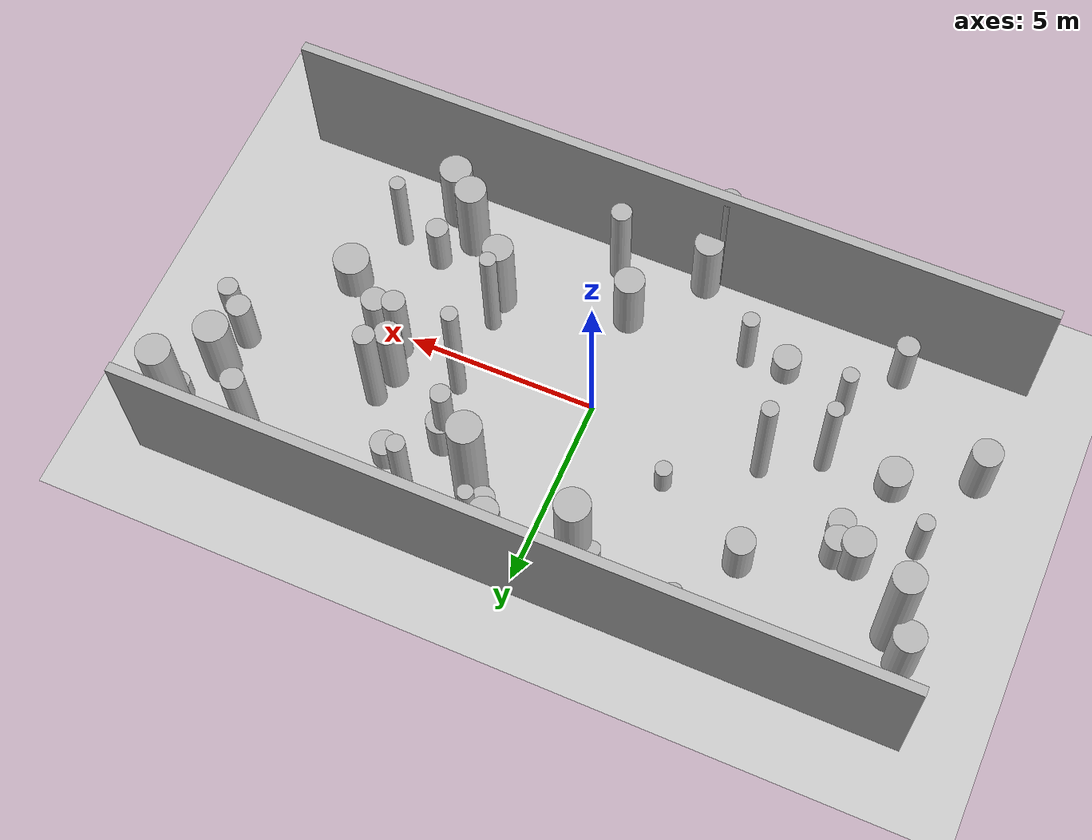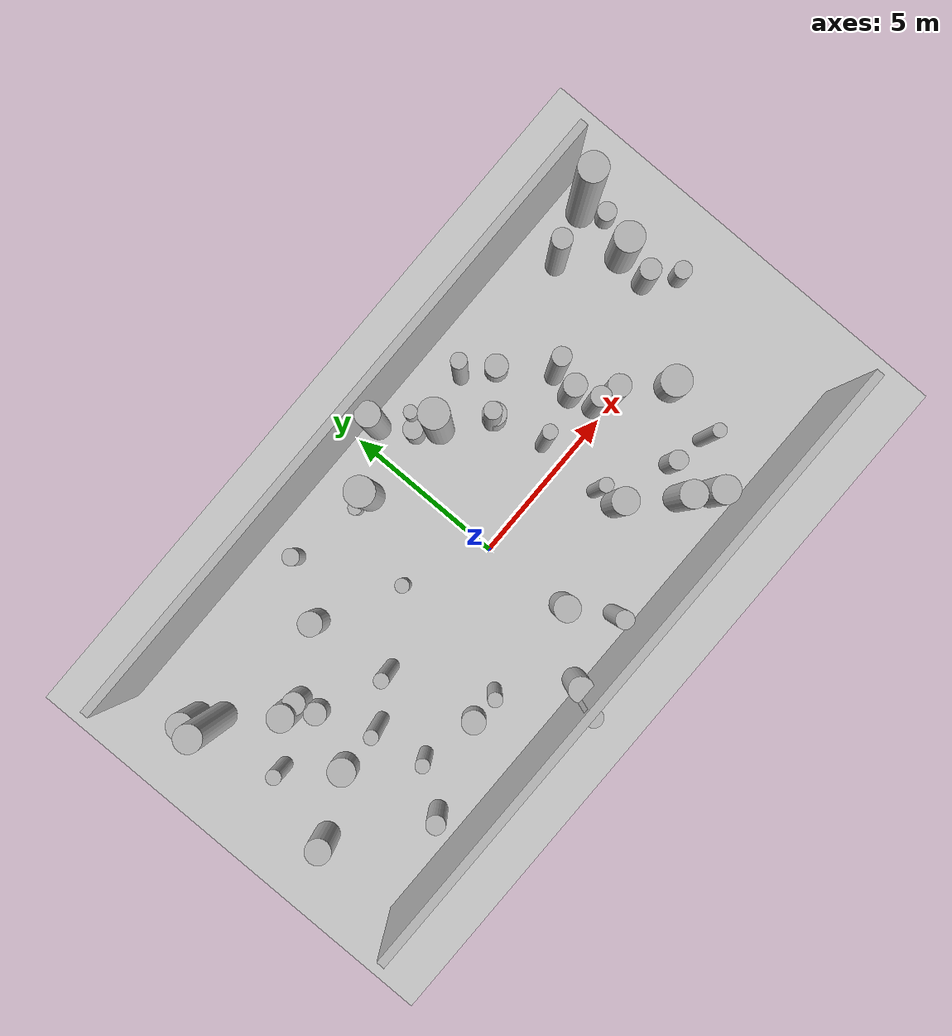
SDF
<?xml version="1.0"?>
<sdf version="1.4">
  <world name="default">
    <gui>
      <camera name="user_camera">
        <pose>-20 -30 40 0 0.66 0.83</pose>
      </camera>
    </gui>
    <include>
      <uri>model://ground_plane</uri>
    </include>
    <include>
      <uri>model://sun</uri>
    </include>
    <scene>
      <shadows>0</shadows>
    </scene>
    <model name="forest">
      <static>true</static>
      <link name="cylinder0">
        <pose>-1.0731578744938641 3.7014130299966954 1.3445067974722544 0 0 0 </pose>
        <visual name="visual">
          <geometry>
            <cylinder>
              <radius>0.4493729491071945</radius>
              <length>2.689013594944509</length>
            </cylinder>
          </geometry>
        </visual>
        <collision name="collision">
          <geometry>
            <cylinder>
              <radius>0.4493729491071945</radius>
              <length>2.689013594944509</length>
            </cylinder>
          </geometry>
          <max_contacts>0</max_contacts>
        </collision>
      </link>
      <link name="cylinder1">
        <pose>-7.458288733308949 1.4256506433086784 0.7282826678804823 0 0 0 </pose>
        <visual name="visual">
          <geometry>
            <cylinder>
              <radius>0.4093963193945494</radius>
              <length>1.4565653357609647</length>
            </cylinder>
          </geometry>
        </visual>
        <collision name="collision">
          <geometry>
            <cylinder>
              <radius>0.4093963193945494</radius>
              <length>1.4565653357609647</length>
            </cylinder>
          </geometry>
          <max_contacts>0</max_contacts>
        </collision>
      </link>
      <link name="cylinder2">
        <pose>-6.850623654062577 -3.8256096706738063 0.8780997554495946 0 0 0 </pose>
        <visual name="visual">
          <geometry>
            <cylinder>
              <radius>0.2894003541939874</radius>
              <length>1.7561995108991892</length>
            </cylinder>
          </geometry>
        </visual>
        <collision name="collision">
          <geometry>
            <cylinder>
              <radius>0.2894003541939874</radius>
              <length>1.7561995108991892</length>
            </cylinder>
          </geometry>
          <max_contacts>0</max_contacts>
        </collision>
      </link>
      <link name="cylinder3">
        <pose>5.842679247029892 0.16273390962076917 0.9048847346464021 0 0 0 </pose>
        <visual name="visual">
          <geometry>
            <cylinder>
              <radius>0.3422932280731874</radius>
              <length>1.8097694692928041</length>
            </cylinder>
          </geometry>
        </visual>
        <collision name="collision">
          <geometry>
            <cylinder>
              <radius>0.3422932280731874</radius>
              <length>1.8097694692928041</length>
            </cylinder>
          </geometry>
          <max_contacts>0</max_contacts>
        </collision>
      </link>
      <link name="cylinder4">
        <pose>0.908440897573124 -4.003752642916073 1.423945192948528 0 0 0 </pose>
        <visual name="visual">
          <geometry>
            <cylinder>
              <radius>0.2660571866280751</radius>
              <length>2.847890385897056</length>
            </cylinder>
          </geometry>
        </visual>
        <collision name="collision">
          <geometry>
            <cylinder>
              <radius>0.2660571866280751</radius>
              <length>2.847890385897056</length>
            </cylinder>
          </geometry>
          <max_contacts>0</max_contacts>
        </collision>
      </link>
      <link name="cylinder5">
        <pose>9.67231633806104 3.694766397647559 0.36554863530535225 0 0 0 </pose>
        <visual name="visual">
          <geometry>
            <cylinder>
              <radius>0.2891686564312474</radius>
              <length>0.7310972706107045</length>
            </cylinder>
          </geometry>
        </visual>
        <collision name="collision">
          <geometry>
            <cylinder>
              <radius>0.2891686564312474</radius>
              <length>0.7310972706107045</length>
            </cylinder>
          </geometry>
          <max_contacts>0</max_contacts>
        </collision>
      </link>
      <link name="cylinder6">
        <pose>5.4736427613098275 -3.9273814851321607 1.092934059839148 0 0 0 </pose>
        <visual name="visual">
          <geometry>
            <cylinder>
              <radius>0.4217691844070259</radius>
              <length>2.185868119678296</length>
            </cylinder>
          </geometry>
        </visual>
        <collision name="collision">
          <geometry>
            <cylinder>
              <radius>0.4217691844070259</radius>
              <length>2.185868119678296</length>
            </cylinder>
          </geometry>
          <max_contacts>0</max_contacts>
        </collision>
      </link>
      <link name="cylinder7">
        <pose>8.917632071225597 1.6055830701089135 0.8506576532819503 0 0 0 </pose>
        <visual name="visual">
          <geometry>
            <cylinder>
              <radius>0.31575142918974886</radius>
              <length>1.7013153065639006</length>
            </cylinder>
          </geometry>
        </visual>
        <collision name="collision">
          <geometry>
            <cylinder>
              <radius>0.31575142918974886</radius>
              <length>1.7013153065639006</length>
            </cylinder>
          </geometry>
          <max_contacts>0</max_contacts>
        </collision>
      </link>
      <link name="cylinder8">
        <pose>9.346704240861136 4.355947493004228 1.8842254676203596 0 0 0 </pose>
        <visual name="visual">
          <geometry>
            <cylinder>
              <radius>0.4295649329009001</radius>
              <length>3.768450935240719</length>
            </cylinder>
          </geometry>
        </visual>
        <collision name="collision">
          <geometry>
            <cylinder>
              <radius>0.4295649329009001</radius>
              <length>3.768450935240719</length>
            </cylinder>
          </geometry>
          <max_contacts>0</max_contacts>
        </collision>
      </link>
      <link name="cylinder9">
        <pose>-4.10958482272261 -2.892143405163706 0.3945239636003442 0 0 0 </pose>
        <visual name="visual">
          <geometry>
            <cylinder>
              <radius>0.3639786527430833</radius>
              <length>0.7890479272006884</length>
            </cylinder>
          </geometry>
        </visual>
        <collision name="collision">
          <geometry>
            <cylinder>
              <radius>0.3639786527430833</radius>
              <length>0.7890479272006884</length>
            </cylinder>
          </geometry>
          <max_contacts>0</max_contacts>
        </collision>
      </link>
      <link name="cylinder10">
        <pose>4.184099072815313 3.2520210260099756 0.40927502630372675 0 0 0 </pose>
        <visual name="visual">
          <geometry>
            <cylinder>
              <radius>0.35035831164094083</radius>
              <length>0.8185500526074535</length>
            </cylinder>
          </geometry>
        </visual>
        <collision name="collision">
          <geometry>
            <cylinder>
              <radius>0.35035831164094083</radius>
              <length>0.8185500526074535</length>
            </cylinder>
          </geometry>
          <max_contacts>0</max_contacts>
        </collision>
      </link>
      <link name="cylinder11">
        <pose>3.3123151926222523 -1.261067738389702 1.6013583121229489 0 0 0 </pose>
        <visual name="visual">
          <geometry>
            <cylinder>
              <radius>0.2087491045928498</radius>
              <length>3.2027166242458978</length>
            </cylinder>
          </geometry>
        </visual>
        <collision name="collision">
          <geometry>
            <cylinder>
              <radius>0.2087491045928498</radius>
              <length>3.2027166242458978</length>
            </cylinder>
          </geometry>
          <max_contacts>0</max_contacts>
        </collision>
      </link>
      <link name="cylinder12">
        <pose>9.082518165041314 2.6030649352909574 1.0817008564320134 0 0 0 </pose>
        <visual name="visual">
          <geometry>
            <cylinder>
              <radius>0.450515467623928</radius>
              <length>2.163401712864027</length>
            </cylinder>
          </geometry>
        </visual>
        <collision name="collision">
          <geometry>
            <cylinder>
              <radius>0.450515467623928</radius>
              <length>2.163401712864027</length>
            </cylinder>
          </geometry>
          <max_contacts>0</max_contacts>
        </collision>
      </link>
      <link name="cylinder13">
        <pose>2.923894142135291 2.344908267568128 1.410487139339081 0 0 0 </pose>
        <visual name="visual">
          <geometry>
            <cylinder>
              <radius>0.25415221690736517</radius>
              <length>2.820974278678162</length>
            </cylinder>
          </geometry>
        </visual>
        <collision name="collision">
          <geometry>
            <cylinder>
              <radius>0.25415221690736517</radius>
              <length>2.820974278678162</length>
            </cylinder>
          </geometry>
          <max_contacts>0</max_contacts>
        </collision>
      </link>
      <link name="cylinder14">
        <pose>-5.870034124227715 -0.8176549327134621 1.5339669439389465 0 0 0 </pose>
        <visual name="visual">
          <geometry>
            <cylinder>
              <radius>0.21098905295138565</radius>
              <length>3.067933887877893</length>
            </cylinder>
          </geometry>
        </visual>
        <collision name="collision">
          <geometry>
            <cylinder>
              <radius>0.21098905295138565</radius>
              <length>3.067933887877893</length>
            </cylinder>
          </geometry>
          <max_contacts>0</max_contacts>
        </collision>
      </link>
      <link name="cylinder15">
        <pose>3.356490144948827 3.917458154389479 1.3785725855486928 0 0 0 </pose>
        <visual name="visual">
          <geometry>
            <cylinder>
              <radius>0.23491514569380356</radius>
              <length>2.7571451710973855</length>
            </cylinder>
          </geometry>
        </visual>
        <collision name="collision">
          <geometry>
            <cylinder>
              <radius>0.23491514569380356</radius>
              <length>2.7571451710973855</length>
            </cylinder>
          </geometry>
          <max_contacts>0</max_contacts>
        </collision>
      </link>
      <link name="cylinder16">
        <pose>-8.793298235304842 -4.903564646927303 1.0017491183521425 0 0 0 </pose>
        <visual name="visual">
          <geometry>
            <cylinder>
              <radius>0.24878891613959483</radius>
              <length>2.003498236704285</length>
            </cylinder>
          </geometry>
        </visual>
        <collision name="collision">
          <geometry>
            <cylinder>
              <radius>0.24878891613959483</radius>
              <length>2.003498236704285</length>
            </cylinder>
          </geometry>
          <max_contacts>0</max_contacts>
        </collision>
      </link>
      <link name="cylinder17">
        <pose>-9.533995670441657 -1.78887070288385 0.908407617890381 0 0 0 </pose>
        <visual name="visual">
          <geometry>
            <cylinder>
              <radius>0.3866077541912839</radius>
              <length>1.816815235780762</length>
            </cylinder>
          </geometry>
        </visual>
        <collision name="collision">
          <geometry>
            <cylinder>
              <radius>0.3866077541912839</radius>
              <length>1.816815235780762</length>
            </cylinder>
          </geometry>
          <max_contacts>0</max_contacts>
        </collision>
      </link>
      <link name="cylinder18">
        <pose>5.149319908325099 1.8393213930105254 1.6289206284272992 0 0 0 </pose>
        <visual name="visual">
          <geometry>
            <cylinder>
              <radius>0.27336976522104345</radius>
              <length>3.2578412568545985</length>
            </cylinder>
          </geometry>
        </visual>
        <collision name="collision">
          <geometry>
            <cylinder>
              <radius>0.27336976522104345</radius>
              <length>3.2578412568545985</length>
            </cylinder>
          </geometry>
          <max_contacts>0</max_contacts>
        </collision>
      </link>
      <link name="cylinder19">
        <pose>-4.4804725260010265 -0.042238444780585915 1.7133063592588975 0 0 0 </pose>
        <visual name="visual">
          <geometry>
            <cylinder>
              <radius>0.21271344551541266</radius>
              <length>3.426612718517795</length>
            </cylinder>
          </geometry>
        </visual>
        <collision name="collision">
          <geometry>
            <cylinder>
              <radius>0.21271344551541266</radius>
              <length>3.426612718517795</length>
            </cylinder>
          </geometry>
          <max_contacts>0</max_contacts>
        </collision>
      </link>
      <link name="cylinder20">
        <pose>-4.879849368608151 2.5062134758505428 0.7285413947755406 0 0 0 </pose>
        <visual name="visual">
          <geometry>
            <cylinder>
              <radius>0.3650678219928438</radius>
              <length>1.4570827895510812</length>
            </cylinder>
          </geometry>
        </visual>
        <collision name="collision">
          <geometry>
            <cylinder>
              <radius>0.3650678219928438</radius>
              <length>1.4570827895510812</length>
            </cylinder>
          </geometry>
          <max_contacts>0</max_contacts>
        </collision>
      </link>
      <link name="cylinder21">
        <pose>-3.062894661968718 -2.801134690199837 1.0660183001098926 0 0 0 </pose>
        <visual name="visual">
          <geometry>
            <cylinder>
              <radius>0.2178607117731945</radius>
              <length>2.1320366002197852</length>
            </cylinder>
          </geometry>
        </visual>
        <collision name="collision">
          <geometry>
            <cylinder>
              <radius>0.2178607117731945</radius>
              <length>2.1320366002197852</length>
            </cylinder>
          </geometry>
          <max_contacts>0</max_contacts>
        </collision>
      </link>
      <link name="cylinder22">
        <pose>-1.595341598696173 -4.88520472689091 1.8742200682211592 0 0 0 </pose>
        <visual name="visual">
          <geometry>
            <cylinder>
              <radius>0.27091942413054027</radius>
              <length>3.7484401364423183</length>
            </cylinder>
          </geometry>
        </visual>
        <collision name="collision">
          <geometry>
            <cylinder>
              <radius>0.27091942413054027</radius>
              <length>3.7484401364423183</length>
            </cylinder>
          </geometry>
          <max_contacts>0</max_contacts>
        </collision>
      </link>
      <link name="cylinder23">
        <pose>-8.749106948718632 0.49797686887003234 0.8942422654578611 0 0 0 </pose>
        <visual name="visual">
          <geometry>
            <cylinder>
              <radius>0.22620551657398005</radius>
              <length>1.7884845309157222</length>
            </cylinder>
          </geometry>
        </visual>
        <collision name="collision">
          <geometry>
            <cylinder>
              <radius>0.22620551657398005</radius>
              <length>1.7884845309157222</length>
            </cylinder>
          </geometry>
          <max_contacts>0</max_contacts>
        </collision>
      </link>
      <link name="cylinder24">
        <pose>5.351497220531131 -2.4430368631643304 0.8062378528103451 0 0 0 </pose>
        <visual name="visual">
          <geometry>
            <cylinder>
              <radius>0.28937621332864266</radius>
              <length>1.6124757056206902</length>
            </cylinder>
          </geometry>
        </visual>
        <collision name="collision">
          <geometry>
            <cylinder>
              <radius>0.28937621332864266</radius>
              <length>1.6124757056206902</length>
            </cylinder>
          </geometry>
          <max_contacts>0</max_contacts>
        </collision>
      </link>
      <link name="cylinder25">
        <pose>-8.82130225749468 2.8285008696105827 1.8974193030773354 0 0 0 </pose>
        <visual name="visual">
          <geometry>
            <cylinder>
              <radius>0.40219538593115445</radius>
              <length>3.794838606154671</length>
            </cylinder>
          </geometry>
        </visual>
        <collision name="collision">
          <geometry>
            <cylinder>
              <radius>0.40219538593115445</radius>
              <length>3.794838606154671</length>
            </cylinder>
          </geometry>
          <max_contacts>0</max_contacts>
        </collision>
      </link>
      <link name="cylinder26">
        <pose>-1.5959382727055438 3.7513246267483815 0.31585481856495484 0 0 0 </pose>
        <visual name="visual">
          <geometry>
            <cylinder>
              <radius>0.21317789839672954</radius>
              <length>0.6317096371299097</length>
            </cylinder>
          </geometry>
        </visual>
        <collision name="collision">
          <geometry>
            <cylinder>
              <radius>0.21317789839672954</radius>
              <length>0.6317096371299097</length>
            </cylinder>
          </geometry>
          <max_contacts>0</max_contacts>
        </collision>
      </link>
      <link name="cylinder27">
        <pose>3.398669391468802 -1.9793755747872543 1.2926044230503 0 0 0 </pose>
        <visual name="visual">
          <geometry>
            <cylinder>
              <radius>0.39713026039643307</radius>
              <length>2.5852088461006</length>
            </cylinder>
          </geometry>
        </visual>
        <collision name="collision">
          <geometry>
            <cylinder>
              <radius>0.39713026039643307</radius>
              <length>2.5852088461006</length>
            </cylinder>
          </geometry>
          <max_contacts>0</max_contacts>
        </collision>
      </link>
      <link name="cylinder28">
        <pose>4.973110581890687 1.1081886933873522 1.127882564432713 0 0 0 </pose>
        <visual name="visual">
          <geometry>
            <cylinder>
              <radius>0.3420479702841406</radius>
              <length>2.255765128865426</length>
            </cylinder>
          </geometry>
        </visual>
        <collision name="collision">
          <geometry>
            <cylinder>
              <radius>0.3420479702841406</radius>
              <length>2.255765128865426</length>
            </cylinder>
          </geometry>
          <max_contacts>0</max_contacts>
        </collision>
      </link>
      <link name="cylinder29">
        <pose>-7.647155455069125 -0.8970398262537724 0.45419802351618915 0 0 0 </pose>
        <visual name="visual">
          <geometry>
            <cylinder>
              <radius>0.426155758506776</radius>
              <length>0.9083960470323783</length>
            </cylinder>
          </geometry>
        </visual>
        <collision name="collision">
          <geometry>
            <cylinder>
              <radius>0.426155758506776</radius>
              <length>0.9083960470323783</length>
            </cylinder>
          </geometry>
          <max_contacts>0</max_contacts>
        </collision>
      </link>
      <link name="cylinder30">
        <pose>9.71422686117431 0.9119071238879375 0.504064370855819 0 0 0 </pose>
        <visual name="visual">
          <geometry>
            <cylinder>
              <radius>0.26776656793713893</radius>
              <length>1.008128741711638</length>
            </cylinder>
          </geometry>
        </visual>
        <collision name="collision">
          <geometry>
            <cylinder>
              <radius>0.26776656793713893</radius>
              <length>1.008128741711638</length>
            </cylinder>
          </geometry>
          <max_contacts>0</max_contacts>
        </collision>
      </link>
      <link name="cylinder31">
        <pose>-5.812267490591672 -2.471726758369097 0.921151265901817 0 0 0 </pose>
        <visual name="visual">
          <geometry>
            <cylinder>
              <radius>0.21608377477211818</radius>
              <length>1.842302531803634</length>
            </cylinder>
          </geometry>
        </visual>
        <collision name="collision">
          <geometry>
            <cylinder>
              <radius>0.21608377477211818</radius>
              <length>1.842302531803634</length>
            </cylinder>
          </geometry>
          <max_contacts>0</max_contacts>
        </collision>
      </link>
      <link name="cylinder32">
        <pose>7.132862199948377 -0.9869714102370324 0.5769616782356772 0 0 0 </pose>
        <visual name="visual">
          <geometry>
            <cylinder>
              <radius>0.47421288929789013</radius>
              <length>1.1539233564713545</length>
            </cylinder>
          </geometry>
        </visual>
        <collision name="collision">
          <geometry>
            <cylinder>
              <radius>0.47421288929789013</radius>
              <length>1.1539233564713545</length>
            </cylinder>
          </geometry>
          <max_contacts>0</max_contacts>
        </collision>
      </link>
      <link name="cylinder33">
        <pose>0.6543438098610306 4.810403936836529 1.5694881624999237 0 0 0 </pose>
        <visual name="visual">
          <geometry>
            <cylinder>
              <radius>0.36623563237287815</radius>
              <length>3.1389763249998475</length>
            </cylinder>
          </geometry>
        </visual>
        <collision name="collision">
          <geometry>
            <cylinder>
              <radius>0.36623563237287815</radius>
              <length>3.1389763249998475</length>
            </cylinder>
          </geometry>
          <max_contacts>0</max_contacts>
        </collision>
      </link>
      <link name="cylinder34">
        <pose>0.14201076891020037 -2.711179046076645 1.0180240648064565 0 0 0 </pose>
        <visual name="visual">
          <geometry>
            <cylinder>
              <radius>0.39067623976124966</radius>
              <length>2.036048129612913</length>
            </cylinder>
          </geometry>
        </visual>
        <collision name="collision">
          <geometry>
            <cylinder>
              <radius>0.39067623976124966</radius>
              <length>2.036048129612913</length>
            </cylinder>
          </geometry>
          <max_contacts>0</max_contacts>
        </collision>
      </link>
      <link name="cylinder35">
        <pose>5.151288954464064 0.3608269774002988 1.2551641755456737 0 0 0 </pose>
        <visual name="visual">
          <geometry>
            <cylinder>
              <radius>0.2983072680071073</radius>
              <length>2.5103283510913474</length>
            </cylinder>
          </geometry>
        </visual>
        <collision name="collision">
          <geometry>
            <cylinder>
              <radius>0.2983072680071073</radius>
              <length>2.5103283510913474</length>
            </cylinder>
          </geometry>
          <max_contacts>0</max_contacts>
        </collision>
      </link>
      <link name="cylinder36">
        <pose>1.7624255472484602 3.386396570275325 1.9485776982402927 0 0 0 </pose>
        <visual name="visual">
          <geometry>
            <cylinder>
              <radius>0.43368950721780797</radius>
              <length>3.8971553964805854</length>
            </cylinder>
          </geometry>
        </visual>
        <collision name="collision">
          <geometry>
            <cylinder>
              <radius>0.43368950721780797</radius>
              <length>3.8971553964805854</length>
            </cylinder>
          </geometry>
          <max_contacts>0</max_contacts>
        </collision>
      </link>
      <link name="cylinder37">
        <pose>-3.8342747948270457 4.194872013900596 0.5384286241217935 0 0 0 </pose>
        <visual name="visual">
          <geometry>
            <cylinder>
              <radius>0.25761493898386006</radius>
              <length>1.076857248243587</length>
            </cylinder>
          </geometry>
        </visual>
        <collision name="collision">
          <geometry>
            <cylinder>
              <radius>0.25761493898386006</radius>
              <length>1.076857248243587</length>
            </cylinder>
          </geometry>
          <max_contacts>0</max_contacts>
        </collision>
      </link>
      <link name="cylinder38">
        <pose>1.2046359859120095 3.8415850579988575 0.6924461785373599 0 0 0 </pose>
        <visual name="visual">
          <geometry>
            <cylinder>
              <radius>0.2967615260972749</radius>
              <length>1.3848923570747198</length>
            </cylinder>
          </geometry>
        </visual>
        <collision name="collision">
          <geometry>
            <cylinder>
              <radius>0.2967615260972749</radius>
              <length>1.3848923570747198</length>
            </cylinder>
          </geometry>
          <max_contacts>0</max_contacts>
        </collision>
      </link>
      <link name="cylinder39">
        <pose>-6.885579233903818 0.7734457272563269 0.375533011106983 0 0 0 </pose>
        <visual name="visual">
          <geometry>
            <cylinder>
              <radius>0.34594307538004515</radius>
              <length>0.751066022213966</length>
            </cylinder>
          </geometry>
        </visual>
        <collision name="collision">
          <geometry>
            <cylinder>
              <radius>0.34594307538004515</radius>
              <length>0.751066022213966</length>
            </cylinder>
          </geometry>
          <max_contacts>0</max_contacts>
        </collision>
      </link>
      <link name="cylinder40">
        <pose>6.489225933822031 -2.6783841334943013 1.3382561533176336 0 0 0 </pose>
        <visual name="visual">
          <geometry>
            <cylinder>
              <radius>0.20279554853920856</radius>
              <length>2.676512306635267</length>
            </cylinder>
          </geometry>
        </visual>
        <collision name="collision">
          <geometry>
            <cylinder>
              <radius>0.20279554853920856</radius>
              <length>2.676512306635267</length>
            </cylinder>
          </geometry>
          <max_contacts>0</max_contacts>
        </collision>
      </link>
      <link name="cylinder41">
        <pose>-2.418723237679372 1.2352513378954333 0.4474202295478985 0 0 0 </pose>
        <visual name="visual">
          <geometry>
            <cylinder>
              <radius>0.2172513171283284</radius>
              <length>0.894840459095797</length>
            </cylinder>
          </geometry>
        </visual>
        <collision name="collision">
          <geometry>
            <cylinder>
              <radius>0.2172513171283284</radius>
              <length>0.894840459095797</length>
            </cylinder>
          </geometry>
          <max_contacts>0</max_contacts>
        </collision>
      </link>
      <link name="cylinder42">
        <pose>1.4983091571477214 4.127530903955099 1.0165814519873018 0 0 0 </pose>
        <visual name="visual">
          <geometry>
            <cylinder>
              <radius>0.2021987604254935</radius>
              <length>2.0331629039746035</length>
            </cylinder>
          </geometry>
        </visual>
        <collision name="collision">
          <geometry>
            <cylinder>
              <radius>0.2021987604254935</radius>
              <length>2.0331629039746035</length>
            </cylinder>
          </geometry>
          <max_contacts>0</max_contacts>
        </collision>
      </link>
      <link name="cylinder43">
        <pose>-6.9589007441423245 1.4160230731591517 0.5992232923945384 0 0 0 </pose>
        <visual name="visual">
          <geometry>
            <cylinder>
              <radius>0.3425173585034653</radius>
              <length>1.1984465847890768</length>
            </cylinder>
          </geometry>
        </visual>
        <collision name="collision">
          <geometry>
            <cylinder>
              <radius>0.3425173585034653</radius>
              <length>1.1984465847890768</length>
            </cylinder>
          </geometry>
          <max_contacts>0</max_contacts>
        </collision>
      </link>
      <link name="cylinder44">
        <pose>3.3524736425279027 0.7782901605702461 1.905104995433562 0 0 0 </pose>
        <visual name="visual">
          <geometry>
            <cylinder>
              <radius>0.20913799414667028</radius>
              <length>3.810209990867124</length>
            </cylinder>
          </geometry>
        </visual>
        <collision name="collision">
          <geometry>
            <cylinder>
              <radius>0.20913799414667028</radius>
              <length>3.810209990867124</length>
            </cylinder>
          </geometry>
          <max_contacts>0</max_contacts>
        </collision>
      </link>
      <link name="cylinder45">
        <pose>-1.318994860607905 -4.432638501179156 1.0724954874793136 0 0 0 </pose>
        <visual name="visual">
          <geometry>
            <cylinder>
              <radius>0.37410552419346765</radius>
              <length>2.144990974958627</length>
            </cylinder>
          </geometry>
        </visual>
        <collision name="collision">
          <geometry>
            <cylinder>
              <radius>0.37410552419346765</radius>
              <length>2.144990974958627</length>
            </cylinder>
          </geometry>
          <max_contacts>0</max_contacts>
        </collision>
      </link>
      <link name="cylinder46">
        <pose>4.737831467604439 -3.279206229511481 1.2925429100154933 0 0 0 </pose>
        <visual name="visual">
          <geometry>
            <cylinder>
              <radius>0.4072472402454398</radius>
              <length>2.5850858200309865</length>
            </cylinder>
          </geometry>
        </visual>
        <collision name="collision">
          <geometry>
            <cylinder>
              <radius>0.4072472402454398</radius>
              <length>2.5850858200309865</length>
            </cylinder>
          </geometry>
          <max_contacts>0</max_contacts>
        </collision>
      </link>
      <link name="cylinder47">
        <pose>7.676790238082685 3.9138513130999506 1.3832511509130188 0 0 0 </pose>
        <visual name="visual">
          <geometry>
            <cylinder>
              <radius>0.2988396209220962</radius>
              <length>2.7665023018260375</length>
            </cylinder>
          </geometry>
        </visual>
        <collision name="collision">
          <geometry>
            <cylinder>
              <radius>0.2988396209220962</radius>
              <length>2.7665023018260375</length>
            </cylinder>
          </geometry>
          <max_contacts>0</max_contacts>
        </collision>
      </link>
      <link name="cylinder48">
        <pose>-9.302574734290252 3.3893587951778716 0.9808501502513177 0 0 0 </pose>
        <visual name="visual">
          <geometry>
            <cylinder>
              <radius>0.40605208970345363</radius>
              <length>1.9617003005026354</length>
            </cylinder>
          </geometry>
        </visual>
        <collision name="collision">
          <geometry>
            <cylinder>
              <radius>0.40605208970345363</radius>
              <length>1.9617003005026354</length>
            </cylinder>
          </geometry>
          <max_contacts>0</max_contacts>
        </collision>
      </link>
      <link name="cylinder49">
        <pose>3.041982161278785 2.364378500936878 0.6388316129689434 0 0 0 </pose>
        <visual name="visual">
          <geometry>
            <cylinder>
              <radius>0.3602538321822208</radius>
              <length>1.2776632259378868</length>
            </cylinder>
          </geometry>
        </visual>
        <collision name="collision">
          <geometry>
            <cylinder>
              <radius>0.3602538321822208</radius>
              <length>1.2776632259378868</length>
            </cylinder>
          </geometry>
          <max_contacts>0</max_contacts>
        </collision>
      </link>
      <link name="cube0">
        <pose>0 5.25 2.0 0 0 0 </pose>
        <visual name="visual">
          <geometry>
            <box>
              <size>20 0.25 4.0</size>
            </box>
          </geometry>
        </visual>
        <collision name="collision">
          <geometry>
            <box>
              <size>20 0.25 4.0</size>
            </box>
          </geometry>
          <max_contacts>0</max_contacts>
        </collision>
      </link>
      <link name="cube1">
        <pose>0 -4.75 2.0 0 0 0 </pose>
        <visual name="visual">
          <geometry>
            <box>
              <size>20 0.25 4.0</size>
            </box>
          </geometry>
        </visual>
        <collision name="collision">
          <geometry>
            <box>
              <size>20 0.25 4.0</size>
            </box>
          </geometry>
          <max_contacts>0</max_contacts>
        </collision>
      </link>
    </model>
    <!-- Plugins -->
    <plugin name="gazebo_octomap" filename="librotors_gazebo_octomap_plugin.so"/>
    <plugin name="ros_interface_plugin" filename="librotors_gazebo_ros_interface_plugin.so"/>
    <!-- Physics -->
    <physics name="default_physics" default="0" type="ode">
      <max_step_size>0.004</max_step_size>
      <real_time_factor>1</real_time_factor>
      <real_time_update_rate>250</real_time_update_rate>
      <gravity>0 0 -9.8</gravity>
      <magnetic_field>6e-06 2.3e-05 -4.2e-05</magnetic_field>
      <ode>
        <solver>
          <type>quick</type>
          <iters>1000</iters>
          <sor>1.3</sor>
          <use_dynamic_moi_rescaling>0</use_dynamic_moi_rescaling>
        </solver>
        <constraints>
          <cfm>0</cfm>
          <erp>0.2</erp>
          <contact_max_correcting_vel>100</contact_max_correcting_vel>
          <contact_surface_layer>0.001</contact_surface_layer>
        </constraints>
      </ode>
    </physics>
  </world>
</sdf>
